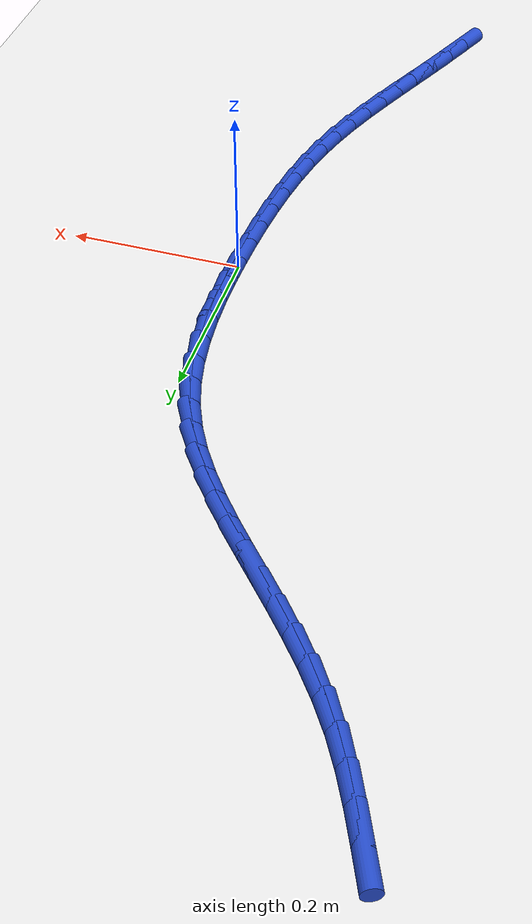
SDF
<sdf version="1.6">
 <world name="default">
  <model name="ground_plane">
   <static>1</static>
   <link name="link">
    <collision name="collision">
     <geometry><plane><normal>0 0 1</normal><size>100 100</size></plane></geometry>
     <surface><friction><ode><mu>100</mu><mu2>50</mu2></ode></friction></surface>
    </collision>
    <visual name="visual">
     <cast_shadows>0</cast_shadows>
     <geometry><plane><normal>0 0 1</normal><size>100 100</size></plane></geometry>
     <material>
      <script><uri>file://media/materials/scripts/gazebo.material</uri><name>Gazebo/WhiteGlow</name></script>
     </material>
    </visual>
   </link>
  </model>
  <model name="line">
   <link name="link_0">
    <pose>-2.4936649967166602e-18 1.3877787807814457e-17 0.01 0 1.57 1.55556651719316</pose>
    <collision name="collision">
     <geometry><cylinder><radius>0.01</radius><length>0.08</length></cylinder></geometry>
    </collision>
    <visual name="visual">
     <material>
      <script><name>Gazebo/Blue</name><uri>file://media/materials/scripts/gazebo.material</uri></script>
     </material>
     <geometry><cylinder><radius>0.01</radius><length>0.08</length></cylinder></geometry>
    </visual>
   </link>
   <link name="link_1">
    <pose>0.0005407337437679585 0.035502212440779134 0.01 0 1.57 -1.5596700850896297</pose>
    <collision name="collision">
     <geometry><cylinder><radius>0.01</radius><length>0.08</length></cylinder></geometry>
    </collision>
    <visual name="visual">
     <material>
      <script><name>Gazebo/Blue</name><uri>file://media/materials/scripts/gazebo.material</uri></script>
     </material>
     <geometry><cylinder><radius>0.01</radius><length>0.08</length></cylinder></geometry>
    </visual>
   </link>
   <link name="link_2">
    <pose>0.0001457572536413622 0.07100029004681058 0.01 0 1.57 -1.5233195470723986</pose>
    <collision name="collision">
     <geometry><cylinder><radius>0.01</radius><length>0.08</length></cylinder></geometry>
    </collision>
    <visual name="visual">
     <material>
      <script><name>Gazebo/Blue</name><uri>file://media/materials/scripts/gazebo.material</uri></script>
     </material>
     <geometry><cylinder><radius>0.01</radius><length>0.08</length></cylinder></geometry>
    </visual>
   </link>
   <link name="link_3">
    <pose>-0.0015288611522829391 0.10624615139334401 0.01 0 1.57 -1.4761557841041826</pose>
    <collision name="collision">
     <geometry><cylinder><radius>0.01</radius><length>0.08</length></cylinder></geometry>
    </collision>
    <visual name="visual">
     <material>
      <script><name>Gazebo/Blue</name><uri>file://media/materials/scripts/gazebo.material</uri></script>
     </material>
     <geometry><cylinder><radius>0.01</radius><length>0.08</length></cylinder></geometry>
    </visual>
   </link>
   <link name="link_4">
    <pose>-0.004827053155908098 0.14099171505562902 0.01 0 1.57 -1.417131085236432</pose>
    <collision name="collision">
     <geometry><cylinder><radius>0.01</radius><length>0.08</length></cylinder></geometry>
    </collision>
    <visual name="visual">
     <material>
      <script><name>Gazebo/Blue</name><uri>file://media/materials/scripts/gazebo.material</uri></script>
     </material>
     <geometry><cylinder><radius>0.01</radius><length>0.08</length></cylinder></geometry>
    </visual>
   </link>
   <link name="link_5">
    <pose>-0.010092750439137257 0.17498889960891525 0.01 0 1.57 -1.3451030389582668</pose>
    <collision name="collision">
     <geometry><cylinder><radius>0.01</radius><length>0.08</length></cylinder></geometry>
    </collision>
    <visual name="visual">
     <material>
      <script><name>Gazebo/Blue</name><uri>file://media/materials/scripts/gazebo.material</uri></script>
     </material>
     <geometry><cylinder><radius>0.01</radius><length>0.08</length></cylinder></geometry>
    </visual>
   </link>
   <link name="link_6">
    <pose>-0.017669884683873573 0.20798962362845225 0.01 0 1.57 -1.2590801547431074</pose>
    <collision name="collision">
     <geometry><cylinder><radius>0.01</radius><length>0.08</length></cylinder></geometry>
    </collision>
    <visual name="visual">
     <material>
      <script><name>Gazebo/Blue</name><uri>file://media/materials/scripts/gazebo.material</uri></script>
     </material>
     <geometry><cylinder><radius>0.01</radius><length>0.08</length></cylinder></geometry>
    </visual>
   </link>
   <link name="link_7">
    <pose>-0.027902387572020196 0.2397458056894896 0.01 0 1.57 -1.1602870891569408</pose>
    <collision name="collision">
     <geometry><cylinder><radius>0.01</radius><length>0.08</length></cylinder></geometry>
    </collision>
    <visual name="visual">
     <material>
      <script><name>Gazebo/Blue</name><uri>file://media/materials/scripts/gazebo.material</uri></script>
     </material>
     <geometry><cylinder><radius>0.01</radius><length>0.08</length></cylinder></geometry>
    </visual>
   </link>
   <link name="link_8">
    <pose>-0.04108747601247227 0.2700398645638132 0.01 0 1.57 -1.0662621398742202</pose>
    <collision name="collision">
     <geometry><cylinder><radius>0.01</radius><length>0.08</length></cylinder></geometry>
    </collision>
    <visual name="visual">
     <material>
      <script><name>Gazebo/Blue</name><uri>file://media/materials/scripts/gazebo.material</uri></script>
     </material>
     <geometry><cylinder><radius>0.01</radius><length>0.08</length></cylinder></geometry>
    </visual>
   </link>
   <link name="link_9">
    <pose>-0.057056437079254965 0.2989584258216271 0.01 0 1.57 -0.9882858720722261</pose>
    <collision name="collision">
     <geometry><cylinder><radius>0.01</radius><length>0.08</length></cylinder></geometry>
    </collision>
    <visual name="visual">
     <material>
      <script><name>Gazebo/Blue</name><uri>file://media/materials/scripts/gazebo.material</uri></script>
     </material>
     <geometry><cylinder><radius>0.01</radius><length>0.08</length></cylinder></geometry>
    </visual>
   </link>
   <link name="link_10">
    <pose>-0.07537294183143801 0.3267628422238459 0.01 0 1.57 -0.92707556029061</pose>
    <collision name="collision">
     <geometry><cylinder><radius>0.01</radius><length>0.08</length></cylinder></geometry>
    </collision>
    <visual name="visual">
     <material>
      <script><name>Gazebo/Blue</name><uri>file://media/materials/scripts/gazebo.material</uri></script>
     </material>
     <geometry><cylinder><radius>0.01</radius><length>0.08</length></cylinder></geometry>
    </visual>
   </link>
   <link name="link_11">
    <pose>-0.09559747350886202 0.3537165478668324 0.01 0 1.57 -0.8823351379523636</pose>
    <collision name="collision">
     <geometry><cylinder><radius>0.01</radius><length>0.08</length></cylinder></geometry>
    </collision>
    <visual name="visual">
     <material>
      <script><name>Gazebo/Blue</name><uri>file://media/materials/scripts/gazebo.material</uri></script>
     </material>
     <geometry><cylinder><radius>0.01</radius><length>0.08</length></cylinder></geometry>
    </visual>
   </link>
   <link name="link_12">
    <pose>-0.11729051535136747 0.3800829768469493 0.01 0 1.57 -0.8533866585685161</pose>
    <collision name="collision">
     <geometry><cylinder><radius>0.01</radius><length>0.08</length></cylinder></geometry>
    </collision>
    <visual name="visual">
     <material>
      <script><name>Gazebo/Blue</name><uri>file://media/materials/scripts/gazebo.material</uri></script>
     </material>
     <geometry><cylinder><radius>0.01</radius><length>0.08</length></cylinder></geometry>
    </visual>
   </link>
   <link name="link_13">
    <pose>-0.14001255059879494 0.4061255632605595 0.01 0 1.57 -0.839523905654398</pose>
    <collision name="collision">
     <geometry><cylinder><radius>0.01</radius><length>0.08</length></cylinder></geometry>
    </collision>
    <visual name="visual">
     <material>
      <script><name>Gazebo/Blue</name><uri>file://media/materials/scripts/gazebo.material</uri></script>
     </material>
     <geometry><cylinder><radius>0.01</radius><length>0.08</length></cylinder></geometry>
    </visual>
   </link>
   <link name="link_14">
    <pose>-0.16332406249098497 0.43210774120402573 0.01 0 1.57 -0.8402055397567152</pose>
    <collision name="collision">
     <geometry><cylinder><radius>0.01</radius><length>0.08</length></cylinder></geometry>
    </collision>
    <visual name="visual">
     <material>
      <script><name>Gazebo/Blue</name><uri>file://media/materials/scripts/gazebo.material</uri></script>
     </material>
     <geometry><cylinder><radius>0.01</radius><length>0.08</length></cylinder></geometry>
    </visual>
   </link>
   <link name="link_15">
    <pose>-0.18678553426777803 0.45829294477371063 0.01 0 1.57 -0.8551263353817182</pose>
    <collision name="collision">
     <geometry><cylinder><radius>0.01</radius><length>0.08</length></cylinder></geometry>
    </collision>
    <visual name="visual">
     <material>
      <script><name>Gazebo/Blue</name><uri>file://media/materials/scripts/gazebo.material</uri></script>
     </material>
     <geometry><cylinder><radius>0.01</radius><length>0.08</length></cylinder></geometry>
    </visual>
   </link>
   <link name="link_16">
    <pose>-0.20995744916901488 0.4849446080659775 0.01 0 1.57 -0.8841978674726166</pose>
    <collision name="collision">
     <geometry><cylinder><radius>0.01</radius><length>0.08</length></cylinder></geometry>
    </collision>
    <visual name="visual">
     <material>
      <script><name>Gazebo/Blue</name><uri>file://media/materials/scripts/gazebo.material</uri></script>
     </material>
     <geometry><cylinder><radius>0.01</radius><length>0.08</length></cylinder></geometry>
    </visual>
   </link>
   <link name="link_17">
    <pose>-0.23240029043453575 0.5123261651771882 0.01 0 1.57 -0.9274511577896902</pose>
    <collision name="collision">
     <geometry><cylinder><radius>0.01</radius><length>0.08</length></cylinder></geometry>
    </collision>
    <visual name="visual">
     <material>
      <script><name>Gazebo/Blue</name><uri>file://media/materials/scripts/gazebo.material</uri></script>
     </material>
     <geometry><cylinder><radius>0.01</radius><length>0.08</length></cylinder></geometry>
    </visual>
   </link>
   <link name="link_18">
    <pose>-0.2536745413041813 0.5407010502037062 0.01 0 1.57 -0.9848592951377003</pose>
    <collision name="collision">
     <geometry><cylinder><radius>0.01</radius><length>0.08</length></cylinder></geometry>
    </collision>
    <visual name="visual">
     <material>
      <script><name>Gazebo/Blue</name><uri>file://media/materials/scripts/gazebo.material</uri></script>
     </material>
     <geometry><cylinder><radius>0.01</radius><length>0.08</length></cylinder></geometry>
    </visual>
   </link>
   <link name="link_19">
    <pose>-0.2733406850177922 0.5703326972418941 0.01 0 1.57 -1.0524176009330115</pose>
    <collision name="collision">
     <geometry><cylinder><radius>0.01</radius><length>0.08</length></cylinder></geometry>
    </collision>
    <visual name="visual">
     <material>
      <script><name>Gazebo/Blue</name><uri>file://media/materials/scripts/gazebo.material</uri></script>
     </material>
     <geometry><cylinder><radius>0.01</radius><length>0.08</length></cylinder></geometry>
    </visual>
   </link>
   <link name="link_20">
    <pose>-0.2910648924276981 0.6014053900121284 0.01 0 1.57 -1.1065968287180132</pose>
    <collision name="collision">
     <geometry><cylinder><radius>0.01</radius><length>0.08</length></cylinder></geometry>
    </collision>
    <visual name="visual">
     <material>
      <script><name>Gazebo/Blue</name><uri>file://media/materials/scripts/gazebo.material</uri></script>
     </material>
     <geometry><cylinder><radius>0.01</radius><length>0.08</length></cylinder></geometry>
    </visual>
   </link>
   <link name="link_21">
    <pose>-0.3071847175503509 0.6336006075198406 0.01 0 1.57 -1.1389870851496646</pose>
    <collision name="collision">
     <geometry><cylinder><radius>0.01</radius><length>0.08</length></cylinder></geometry>
    </collision>
    <visual name="visual">
     <material>
      <script><name>Gazebo/Blue</name><uri>file://media/materials/scripts/gazebo.material</uri></script>
     </material>
     <geometry><cylinder><radius>0.01</radius><length>0.08</length></cylinder></geometry>
    </visual>
   </link>
   <link name="link_22">
    <pose>-0.32230048990969673 0.6664030338980236 0.01 0 1.57 -1.1502093565112395</pose>
    <collision name="collision">
     <geometry><cylinder><radius>0.01</radius><length>0.08</length></cylinder></geometry>
    </collision>
    <visual name="visual">
     <material>
      <script><name>Gazebo/Blue</name><uri>file://media/materials/scripts/gazebo.material</uri></script>
     </material>
     <geometry><cylinder><radius>0.01</radius><length>0.08</length></cylinder></geometry>
    </visual>
   </link>
   <link name="link_234">
    <pose>-0.14357925872599295 -0.5296542971511349 0.01 0 1.57 1.178864786215958</pose>
    <collision name="collision">
     <geometry><cylinder><radius>0.01</radius><length>0.08</length></cylinder></geometry>
    </collision>
    <visual name="visual">
     <material>
      <script><name>Gazebo/Blue</name><uri>file://media/materials/scripts/gazebo.material</uri></script>
     </material>
     <geometry><cylinder><radius>0.01</radius><length>0.08</length></cylinder></geometry>
    </visual>
   </link>
   <link name="link_235">
    <pose>-0.1295846128455885 -0.49579474976714377 0.01 0 1.57 1.16969883584254</pose>
    <collision name="collision">
     <geometry><cylinder><radius>0.01</radius><length>0.08</length></cylinder></geometry>
    </collision>
    <visual name="visual">
     <material>
      <script><name>Gazebo/Blue</name><uri>file://media/materials/scripts/gazebo.material</uri></script>
     </material>
     <geometry><cylinder><radius>0.01</radius><length>0.08</length></cylinder></geometry>
    </visual>
   </link>
   <link name="link_236">
    <pose>-0.11549730901526453 -0.4625768310515171 0.01 0 1.57 1.1598460964083634</pose>
    <collision name="collision">
     <geometry><cylinder><radius>0.01</radius><length>0.08</length></cylinder></geometry>
    </collision>
    <visual name="visual">
     <material>
      <script><name>Gazebo/Blue</name><uri>file://media/materials/scripts/gazebo.material</uri></script>
     </material>
     <geometry><cylinder><radius>0.01</radius><length>0.08</length></cylinder></geometry>
    </visual>
   </link>
   <link name="link_237">
    <pose>-0.10133344020961352 -0.4300731061846166 0.01 0 1.57 1.158331496703088</pose>
    <collision name="collision">
     <geometry><cylinder><radius>0.01</radius><length>0.08</length></cylinder></geometry>
    </collision>
    <visual name="visual">
     <material>
      <script><name>Gazebo/Blue</name><uri>file://media/materials/scripts/gazebo.material</uri></script>
     </material>
     <geometry><cylinder><radius>0.01</radius><length>0.08</length></cylinder></geometry>
    </visual>
   </link>
   <link name="link_238">
    <pose>-0.08734128461221695 -0.39809577257206186 0.01 0 1.57 1.1658300364846577</pose>
    <collision name="collision">
     <geometry><cylinder><radius>0.01</radius><length>0.08</length></cylinder></geometry>
    </collision>
    <visual name="visual">
     <material>
      <script><name>Gazebo/Blue</name><uri>file://media/materials/scripts/gazebo.material</uri></script>
     </material>
     <geometry><cylinder><radius>0.01</radius><length>0.08</length></cylinder></geometry>
    </visual>
   </link>
   <link name="link_239">
    <pose>-0.07377581446225301 -0.3664495210415676 0.01 0 1.57 1.182663515949399</pose>
    <collision name="collision">
     <geometry><cylinder><radius>0.01</radius><length>0.08</length></cylinder></geometry>
    </collision>
    <visual name="visual">
     <material>
      <script><name>Gazebo/Blue</name><uri>file://media/materials/scripts/gazebo.material</uri></script>
     </material>
     <geometry><cylinder><radius>0.01</radius><length>0.08</length></cylinder></geometry>
    </visual>
   </link>
   <link name="link_240">
    <pose>-0.060892001998900096 -0.3349390424208493 0.01 0 1.57 1.2090180004130735</pose>
    <collision name="collision">
     <geometry><cylinder><radius>0.01</radius><length>0.08</length></cylinder></geometry>
    </collision>
    <visual name="visual">
     <material>
      <script><name>Gazebo/Blue</name><uri>file://media/materials/scripts/gazebo.material</uri></script>
     </material>
     <geometry><cylinder><radius>0.01</radius><length>0.08</length></cylinder></geometry>
    </visual>
   </link>
   <link name="link_241">
    <pose>-0.048944819461335526 -0.30336902753761985 0.01 0 1.57 1.2448861415957102</pose>
    <collision name="collision">
     <geometry><cylinder><radius>0.01</radius><length>0.08</length></cylinder></geometry>
    </collision>
    <visual name="visual">
     <material>
      <script><name>Gazebo/Blue</name><uri>file://media/materials/scripts/gazebo.material</uri></script>
     </material>
     <geometry><cylinder><radius>0.01</radius><length>0.08</length></cylinder></geometry>
    </visual>
   </link>
   <link name="link_242">
    <pose>-0.038189239088737774 -0.2715441672195949 0.01 0 1.57 1.2899355506206645</pose>
    <collision name="collision">
     <geometry><cylinder><radius>0.01</radius><length>0.08</length></cylinder></geometry>
    </collision>
    <visual name="visual">
     <material>
      <script><name>Gazebo/Blue</name><uri>file://media/materials/scripts/gazebo.material</uri></script>
     </material>
     <geometry><cylinder><radius>0.01</radius><length>0.08</length></cylinder></geometry>
    </visual>
   </link>
   <link name="link_243">
    <pose>-0.028878617517787898 -0.23927013948165718 0.01 0 1.57 1.3390669314235084</pose>
    <collision name="collision">
     <geometry><cylinder><radius>0.01</radius><length>0.08</length></cylinder></geometry>
    </collision>
    <visual name="visual">
     <material>
      <script><name>Gazebo/Blue</name><uri>file://media/materials/scripts/gazebo.material</uri></script>
     </material>
     <geometry><cylinder><radius>0.01</radius><length>0.08</length></cylinder></geometry>
    </visual>
   </link>
   <link name="link_244">
    <pose>-0.021130682269803955 -0.20643549626502178 0.01 0 1.57 1.3840529780377626</pose>
    <collision name="collision">
     <geometry><cylinder><radius>0.01</radius><length>0.08</length></cylinder></geometry>
    </collision>
    <visual name="visual">
     <material>
      <script><name>Gazebo/Blue</name><uri>file://media/materials/scripts/gazebo.material</uri></script>
     </material>
     <geometry><cylinder><radius>0.01</radius><length>0.08</length></cylinder></geometry>
    </visual>
   </link>
   <link name="link_245">
    <pose>-0.014827025329390337 -0.17307307622265933 0.01 0 1.57 1.424073623734348</pose>
    <collision name="collision">
     <geometry><cylinder><radius>0.01</radius><length>0.08</length></cylinder></geometry>
    </collision>
    <visual name="visual">
     <material>
      <script><name>Gazebo/Blue</name><uri>file://media/materials/scripts/gazebo.material</uri></script>
     </material>
     <geometry><cylinder><radius>0.01</radius><length>0.08</length></cylinder></geometry>
    </visual>
   </link>
   <link name="link_246">
    <pose>-0.00982556340395054 -0.1392301843938572 0.01 0 1.57 1.4591910792666682</pose>
    <collision name="collision">
     <geometry><cylinder><radius>0.01</radius><length>0.08</length></cylinder></geometry>
    </collision>
    <visual name="visual">
     <material>
      <script><name>Gazebo/Blue</name><uri>file://media/materials/scripts/gazebo.material</uri></script>
     </material>
     <geometry><cylinder><radius>0.01</radius><length>0.08</length></cylinder></geometry>
    </visual>
   </link>
   <link name="link_247">
    <pose>-0.005984213200888099 -0.10495412581790288 0.01 0 1.57 1.4895226233430328</pose>
    <collision name="collision">
     <geometry><cylinder><radius>0.01</radius><length>0.08</length></cylinder></geometry>
    </collision>
    <visual name="visual">
     <material>
      <script><name>Gazebo/Blue</name><uri>file://media/materials/scripts/gazebo.material</uri></script>
     </material>
     <geometry><cylinder><radius>0.01</radius><length>0.08</length></cylinder></geometry>
    </visual>
   </link>
   <link name="link_248">
    <pose>-0.003160891427606518 -0.07029220553408363 0.01 0 1.57 1.515215058666326</pose>
    <collision name="collision">
     <geometry><cylinder><radius>0.01</radius><length>0.08</length></cylinder></geometry>
    </collision>
    <visual name="visual">
     <material>
      <script><name>Gazebo/Blue</name><uri>file://media/materials/scripts/gazebo.material</uri></script>
     </material>
     <geometry><cylinder><radius>0.01</radius><length>0.08</length></cylinder></geometry>
    </visual>
   </link>
   <link name="link_249">
    <pose>-0.0012135147915093133 -0.03529172858168686 0.01 0 1.57 1.5364246222964295</pose>
    <collision name="collision">
     <geometry><cylinder><radius>0.01</radius><length>0.08</length></cylinder></geometry>
    </collision>
    <visual name="visual">
     <material>
      <script><name>Gazebo/Blue</name><uri>file://media/materials/scripts/gazebo.material</uri></script>
     </material>
     <geometry><cylinder><radius>0.01</radius><length>0.08</length></cylinder></geometry>
    </visual>
   </link>
   <link name="link_250">
    <pose>-4.336808689942018e-18 2.0816681711721685e-17 0.01 0 1.57 1.5533019972953963</pose>
    <collision name="collision">
     <geometry><cylinder><radius>0.01</radius><length>0.08</length></cylinder></geometry>
    </collision>
    <visual name="visual">
     <material>
      <script><name>Gazebo/Blue</name><uri>file://media/materials/scripts/gazebo.material</uri></script>
     </material>
     <geometry><cylinder><radius>0.01</radius><length>0.08</length></cylinder></geometry>
    </visual>
   </link>
   <link name="link_251">
    <pose>0.0006217362395178963 0.03553567517168967 0.01 0 1.57 1.5659816473525063</pose>
    <collision name="collision">
     <geometry><cylinder><radius>0.01</radius><length>0.08</length></cylinder></geometry>
    </collision>
    <visual name="visual">
     <material>
      <script><name>Gazebo/Blue</name><uri>file://media/materials/scripts/gazebo.material</uri></script>
     </material>
     <geometry><cylinder><radius>0.01</radius><length>0.08</length></cylinder></geometry>
    </visual>
   </link>
   <link name="link_252">
    <pose>0.0007937772196408713 0.07126799189409469 0.01 0 1.57 1.5596588669418125</pose>
    <collision name="collision">
     <geometry><cylinder><radius>0.01</radius><length>0.08</length></cylinder></geometry>
    </collision>
    <visual name="visual">
     <material>
      <script><name>Gazebo/Blue</name><uri>file://media/materials/scripts/gazebo.material</uri></script>
     </material>
     <geometry><cylinder><radius>0.01</radius><length>0.08</length></cylinder></geometry>
    </visual>
   </link>
  </model>
 </world>
</sdf>
